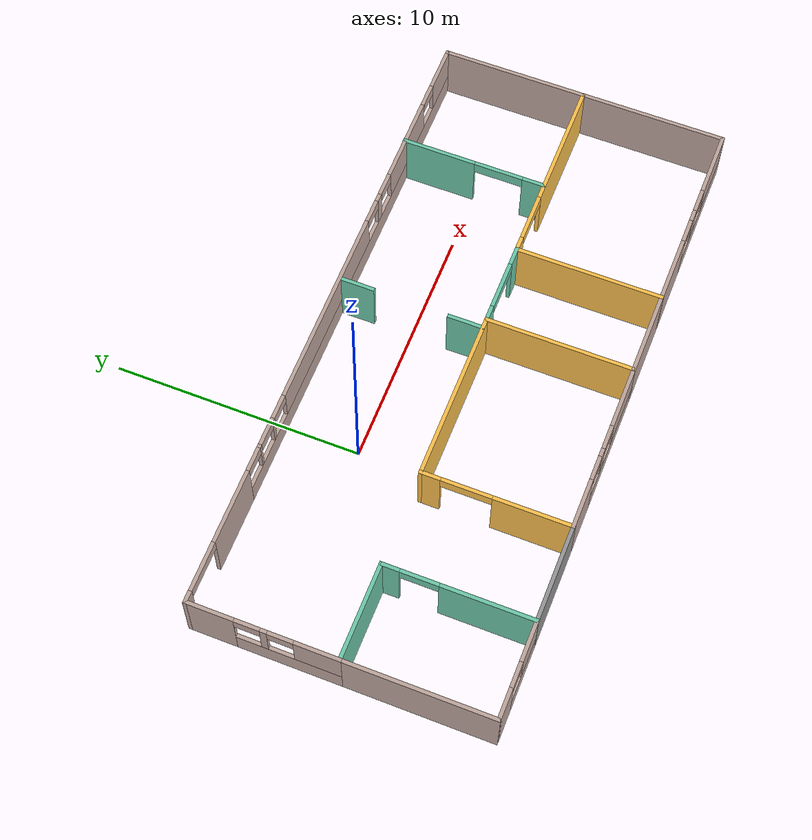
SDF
<?xml version='1.0'?>
<sdf version='1.6'>
  <model name='Building'>
    <pose frame=''>4.22718 -2.84562 0 0 -0 0</pose>
    <link name='Wall_0'>
      <pose frame=''>-12.8748 2.91767 0 0 0 -1.5708</pose>
      <visual name='Wall_0_Visual_0'>
        <pose frame=''>-2.03434 0 1.25 0 -0 0</pose>
        <geometry>
          <box>
            <size>1.93132 0.15 2.5</size>
          </box>
        </geometry>
        <material>
          <script>
            <uri>file://media/materials/scripts/gazebo.material</uri>
            <name>Gazebo/Grey</name>
          </script>
          <ambient>0.760784 0.662745 0.627451 1</ambient>
        </material>
      </visual>
      <collision name='Wall_0_Collision_0'>
        <geometry>
          <box>
            <size>1.93132 0.15 2.5</size>
          </box>
        </geometry>
        <pose frame=''>-2.03434 0 1.25 0 -0 0</pose>
      </collision>
      <visual name='Wall_0_Visual_1'>
        <pose frame=''>0.965658 0 0.5 0 -0 0</pose>
        <geometry>
          <box>
            <size>4.06868 0.15 1</size>
          </box>
        </geometry>
        <material>
          <script>
            <uri>file://media/materials/scripts/gazebo.material</uri>
            <name>Gazebo/Grey</name>
          </script>
          <ambient>0.760784 0.662745 0.627451 1</ambient>
        </material>
      </visual>
      <collision name='Wall_0_Collision_1'>
        <geometry>
          <box>
            <size>4.06868 0.15 1</size>
          </box>
        </geometry>
        <pose frame=''>0.965658 0 0.5 0 -0 0</pose>
      </collision>
      <visual name='Wall_0_Visual_2'>
        <pose frame=''>0.061576 0 1.75 0 -0 0</pose>
        <geometry>
          <box>
            <size>0.26052 0.15 1.5</size>
          </box>
        </geometry>
        <material>
          <script>
            <uri>file://media/materials/scripts/gazebo.material</uri>
            <name>Gazebo/Grey</name>
          </script>
          <ambient>0.760784 0.662745 0.627451 1</ambient>
        </material>
      </visual>
      <collision name='Wall_0_Collision_2'>
        <geometry>
          <box>
            <size>0.26052 0.15 1.5</size>
          </box>
        </geometry>
        <pose frame=''>0.061576 0 1.75 0 -0 0</pose>
      </collision>
      <visual name='Wall_0_Visual_3'>
        <pose frame=''>2.09592 0 1.75 0 -0 0</pose>
        <geometry>
          <box>
            <size>1.80816 0.15 1.5</size>
          </box>
        </geometry>
        <material>
          <script>
            <uri>file://media/materials/scripts/gazebo.material</uri>
            <name>Gazebo/Grey</name>
          </script>
          <ambient>0.760784 0.662745 0.627451 1</ambient>
        </material>
      </visual>
      <collision name='Wall_0_Collision_3'>
        <geometry>
          <box>
            <size>1.80816 0.15 1.5</size>
          </box>
        </geometry>
        <pose frame=''>2.09592 0 1.75 0 -0 0</pose>
      </collision>
      <visual name='Wall_0_Visual_4'>
        <pose frame=''>-0.568684 0 2.25 0 -0 0</pose>
        <geometry>
          <box>
            <size>1 0.15 0.5</size>
          </box>
        </geometry>
        <material>
          <script>
            <uri>file://media/materials/scripts/gazebo.material</uri>
            <name>Gazebo/Grey</name>
          </script>
          <ambient>0.760784 0.662745 0.627451 1</ambient>
        </material>
      </visual>
      <collision name='Wall_0_Collision_4'>
        <geometry>
          <box>
            <size>1 0.15 0.5</size>
          </box>
        </geometry>
        <pose frame=''>-0.568684 0 2.25 0 -0 0</pose>
      </collision>
      <visual name='Wall_0_Visual_5'>
        <pose frame=''>0.691837 0 2.25 0 -0 0</pose>
        <geometry>
          <box>
            <size>1 0.15 0.5</size>
          </box>
        </geometry>
        <material>
          <script>
            <uri>file://media/materials/scripts/gazebo.material</uri>
            <name>Gazebo/Grey</name>
          </script>
          <ambient>0.760784 0.662745 0.627451 1</ambient>
        </material>
      </visual>
      <collision name='Wall_0_Collision_5'>
        <geometry>
          <box>
            <size>1 0.15 0.5</size>
          </box>
        </geometry>
        <pose frame=''>0.691837 0 2.25 0 -0 0</pose>
      </collision>
    </link>
    <link name='Wall_10'>
      <collision name='Wall_10_Collision'>
        <geometry>
          <box>
            <size>4 0.15 2.5</size>
          </box>
        </geometry>
        <pose frame=''>0 0 1.25 0 -0 0</pose>
      </collision>
      <visual name='Wall_10_Visual'>
        <pose frame=''>0 0 1.25 0 -0 0</pose>
        <geometry>
          <box>
            <size>4 0.15 2.5</size>
          </box>
        </geometry>
        <material>
          <script>
            <uri>file://media/materials/scripts/gazebo.material</uri>
            <name>Gazebo/Grey</name>
          </script>
          <ambient>1 1 1 1</ambient>
        </material>
      </visual>
      <pose frame=''>-7.1 -5.85736 0 0 0 -1.2e-05</pose>
    </link>
    <link name='Wall_12'>
      <pose frame=''>-5.175 -2.93236 0 0 -0 1.57074</pose>
      <visual name='Wall_12_Visual_0'>
        <pose frame=''>-1.42698 0 1.25 0 -0 0</pose>
        <geometry>
          <box>
            <size>3.14604 0.15 2.5</size>
          </box>
        </geometry>
        <material>
          <script>
            <uri>file://media/materials/scripts/gazebo.material</uri>
            <name>Gazebo/Grey</name>
          </script>
          <ambient>1 0.764706 0.305882 1</ambient>
        </material>
      </visual>
      <collision name='Wall_12_Collision_0'>
        <geometry>
          <box>
            <size>3.14604 0.15 2.5</size>
          </box>
        </geometry>
        <pose frame=''>-1.42698 0 1.25 0 -0 0</pose>
      </collision>
      <visual name='Wall_12_Visual_1'>
        <pose frame=''>2.57302 0 1.25 0 -0 0</pose>
        <geometry>
          <box>
            <size>0.853958 0.15 2.5</size>
          </box>
        </geometry>
        <material>
          <script>
            <uri>file://media/materials/scripts/gazebo.material</uri>
            <name>Gazebo/Grey</name>
          </script>
          <ambient>1 0.764706 0.305882 1</ambient>
        </material>
      </visual>
      <collision name='Wall_12_Collision_1'>
        <geometry>
          <box>
            <size>0.853958 0.15 2.5</size>
          </box>
        </geometry>
        <pose frame=''>2.57302 0 1.25 0 -0 0</pose>
      </collision>
      <visual name='Wall_12_Visual_2'>
        <pose frame=''>1.14604 0 2.25 0 -0 0</pose>
        <geometry>
          <box>
            <size>2 0.15 0.5</size>
          </box>
        </geometry>
        <material>
          <script>
            <uri>file://media/materials/scripts/gazebo.material</uri>
            <name>Gazebo/Grey</name>
          </script>
          <ambient>1 0.764706 0.305882 1</ambient>
        </material>
      </visual>
      <collision name='Wall_12_Collision_2'>
        <geometry>
          <box>
            <size>2 0.15 0.5</size>
          </box>
        </geometry>
        <pose frame=''>1.14604 0 2.25 0 -0 0</pose>
      </collision>
    </link>
    <link name='Wall_14'>
      <pose frame=''>-1.75018 -5.85738 0 0 -0 0</pose>
      <visual name='Wall_14_Visual_0'>
        <pose frame=''>-2.46755 0 1.25 0 -0 0</pose>
        <geometry>
          <box>
            <size>2.0649 0.15 2.5</size>
          </box>
        </geometry>
        <material>
          <script>
            <uri>file://media/materials/scripts/gazebo.material</uri>
            <name>Gazebo/Grey</name>
          </script>
          <ambient>0.760784 0.662745 0.627451 1</ambient>
        </material>
      </visual>
      <collision name='Wall_14_Collision_0'>
        <geometry>
          <box>
            <size>2.0649 0.15 2.5</size>
          </box>
        </geometry>
        <pose frame=''>-2.46755 0 1.25 0 -0 0</pose>
      </collision>
      <visual name='Wall_14_Visual_1'>
        <pose frame=''>1.03245 0 0.5 0 -0 0</pose>
        <geometry>
          <box>
            <size>4.93509 0.15 1</size>
          </box>
        </geometry>
        <material>
          <script>
            <uri>file://media/materials/scripts/gazebo.material</uri>
            <name>Gazebo/Grey</name>
          </script>
          <ambient>0.760784 0.662745 0.627451 1</ambient>
        </material>
      </visual>
      <collision name='Wall_14_Collision_1'>
        <geometry>
          <box>
            <size>4.93509 0.15 1</size>
          </box>
        </geometry>
        <pose frame=''>1.03245 0 0.5 0 -0 0</pose>
      </collision>
      <visual name='Wall_14_Visual_2'>
        <pose frame=''>-0.267578 0 1.75 0 -0 0</pose>
        <geometry>
          <box>
            <size>0.335034 0.15 1.5</size>
          </box>
        </geometry>
        <material>
          <script>
            <uri>file://media/materials/scripts/gazebo.material</uri>
            <name>Gazebo/Grey</name>
          </script>
          <ambient>0.760784 0.662745 0.627451 1</ambient>
        </material>
      </visual>
      <collision name='Wall_14_Collision_2'>
        <geometry>
          <box>
            <size>0.335034 0.15 1.5</size>
          </box>
        </geometry>
        <pose frame=''>-0.267578 0 1.75 0 -0 0</pose>
      </collision>
      <visual name='Wall_14_Visual_3'>
        <pose frame=''>2.19997 0 1.75 0 -0 0</pose>
        <geometry>
          <box>
            <size>2.60006 0.15 1.5</size>
          </box>
        </geometry>
        <material>
          <script>
            <uri>file://media/materials/scripts/gazebo.material</uri>
            <name>Gazebo/Grey</name>
          </script>
          <ambient>0.760784 0.662745 0.627451 1</ambient>
        </material>
      </visual>
      <collision name='Wall_14_Collision_3'>
        <geometry>
          <box>
            <size>2.60006 0.15 1.5</size>
          </box>
        </geometry>
        <pose frame=''>2.19997 0 1.75 0 -0 0</pose>
      </collision>
      <visual name='Wall_14_Visual_4'>
        <pose frame=''>-0.935095 0 2.25 0 -0 0</pose>
        <geometry>
          <box>
            <size>1 0.15 0.5</size>
          </box>
        </geometry>
        <material>
          <script>
            <uri>file://media/materials/scripts/gazebo.material</uri>
            <name>Gazebo/Grey</name>
          </script>
          <ambient>0.760784 0.662745 0.627451 1</ambient>
        </material>
      </visual>
      <collision name='Wall_14_Collision_4'>
        <geometry>
          <box>
            <size>1 0.15 0.5</size>
          </box>
        </geometry>
        <pose frame=''>-0.935095 0 2.25 0 -0 0</pose>
      </collision>
      <visual name='Wall_14_Visual_5'>
        <pose frame=''>0.399939 0 2.25 0 -0 0</pose>
        <geometry>
          <box>
            <size>1 0.15 0.5</size>
          </box>
        </geometry>
        <material>
          <script>
            <uri>file://media/materials/scripts/gazebo.material</uri>
            <name>Gazebo/Grey</name>
          </script>
          <ambient>0.760784 0.662745 0.627451 1</ambient>
        </material>
      </visual>
      <collision name='Wall_14_Collision_5'>
        <geometry>
          <box>
            <size>1 0.15 0.5</size>
          </box>
        </geometry>
        <pose frame=''>0.399939 0 2.25 0 -0 0</pose>
      </collision>
    </link>
    <link name='Wall_16'>
      <collision name='Wall_16_Collision'>
        <geometry>
          <box>
            <size>6 0.15 2.5</size>
          </box>
        </geometry>
        <pose frame=''>0 0 1.25 0 -0 0</pose>
      </collision>
      <visual name='Wall_16_Visual'>
        <pose frame=''>0 0 1.25 0 -0 0</pose>
        <geometry>
          <box>
            <size>6 0.15 2.5</size>
          </box>
        </geometry>
        <material>
          <script>
            <uri>file://media/materials/scripts/gazebo.material</uri>
            <name>Gazebo/Grey</name>
          </script>
          <ambient>1 0.764706 0.305882 1</ambient>
        </material>
      </visual>
      <pose frame=''>1.67482 -2.93238 0 0 -0 1.5708</pose>
    </link>
    <link name='Wall_18'>
      <collision name='Wall_18_Collision'>
        <geometry>
          <box>
            <size>7 0.15 2.5</size>
          </box>
        </geometry>
        <pose frame=''>0 0 1.25 0 -0 0</pose>
      </collision>
      <visual name='Wall_18_Visual'>
        <pose frame=''>0 0 1.25 0 -0 0</pose>
        <geometry>
          <box>
            <size>7 0.15 2.5</size>
          </box>
        </geometry>
        <material>
          <script>
            <uri>file://media/materials/scripts/gazebo.material</uri>
            <name>Gazebo/Grey</name>
          </script>
          <ambient>1 0.764706 0.305882 1</ambient>
        </material>
      </visual>
      <pose frame=''>-1.75 -0.007356 0 0 0 -7e-06</pose>
    </link>
    <link name='Wall_2'>
      <collision name='Wall_2_Collision'>
        <geometry>
          <box>
            <size>6 0.15 2.5</size>
          </box>
        </geometry>
        <pose frame=''>0 0 1.25 0 -0 0</pose>
      </collision>
      <visual name='Wall_2_Visual'>
        <pose frame=''>0 0 1.25 0 -0 0</pose>
        <geometry>
          <box>
            <size>6 0.15 2.5</size>
          </box>
        </geometry>
        <material>
          <script>
            <uri>file://media/materials/scripts/gazebo.material</uri>
            <name>Gazebo/Grey</name>
          </script>
          <ambient>0.760784 0.662745 0.627451 1</ambient>
        </material>
      </visual>
      <pose frame=''>-12.8748 -2.93233 0 0 0 -1.5708</pose>
    </link>
    <link name='Wall_20'>
      <pose frame=''>3.34982 -0.007379 0 0 -0 0</pose>
      <visual name='Wall_20_Visual_0'>
        <pose frame=''>-1.403 0 1.25 0 -0 0</pose>
        <geometry>
          <box>
            <size>0.693999 0.15 2.5</size>
          </box>
        </geometry>
        <material>
          <script>
            <uri>file://media/materials/scripts/gazebo.material</uri>
            <name>Gazebo/Grey</name>
          </script>
          <ambient>0.435294 0.796078 0.67451 1</ambient>
        </material>
      </visual>
      <collision name='Wall_20_Collision_0'>
        <geometry>
          <box>
            <size>0.693999 0.15 2.5</size>
          </box>
        </geometry>
        <pose frame=''>-1.403 0 1.25 0 -0 0</pose>
      </collision>
      <visual name='Wall_20_Visual_1'>
        <pose frame=''>1.347 0 1.25 0 -0 0</pose>
        <geometry>
          <box>
            <size>0.806001 0.15 2.5</size>
          </box>
        </geometry>
        <material>
          <script>
            <uri>file://media/materials/scripts/gazebo.material</uri>
            <name>Gazebo/Grey</name>
          </script>
          <ambient>0.435294 0.796078 0.67451 1</ambient>
        </material>
      </visual>
      <collision name='Wall_20_Collision_1'>
        <geometry>
          <box>
            <size>0.806001 0.15 2.5</size>
          </box>
        </geometry>
        <pose frame=''>1.347 0 1.25 0 -0 0</pose>
      </collision>
      <visual name='Wall_20_Visual_2'>
        <pose frame=''>-0.056001 0 2.25 0 -0 0</pose>
        <geometry>
          <box>
            <size>2 0.15 0.5</size>
          </box>
        </geometry>
        <material>
          <script>
            <uri>file://media/materials/scripts/gazebo.material</uri>
            <name>Gazebo/Grey</name>
          </script>
          <ambient>0.435294 0.796078 0.67451 1</ambient>
        </material>
      </visual>
      <collision name='Wall_20_Collision_2'>
        <geometry>
          <box>
            <size>2 0.15 0.5</size>
          </box>
        </geometry>
        <pose frame=''>-0.056001 0 2.25 0 -0 0</pose>
      </collision>
    </link>
    <link name='Wall_23'>
      <collision name='Wall_23_Collision'>
        <geometry>
          <box>
            <size>3.5 0.15 2.5</size>
          </box>
        </geometry>
        <pose frame=''>0 0 1.25 0 -0 0</pose>
      </collision>
      <visual name='Wall_23_Visual'>
        <pose frame=''>0 0 1.25 0 -0 0</pose>
        <geometry>
          <box>
            <size>3.5 0.15 2.5</size>
          </box>
        </geometry>
        <material>
          <script>
            <uri>file://media/materials/scripts/gazebo.material</uri>
            <name>Gazebo/Grey</name>
          </script>
          <ambient>0.760784 0.662745 0.627451 1</ambient>
        </material>
      </visual>
      <pose frame=''>3.34982 -5.85738 0 0 -0 0</pose>
    </link>
    <link name='Wall_24'>
      <collision name='Wall_24_Collision'>
        <geometry>
          <box>
            <size>6 0.15 2.5</size>
          </box>
        </geometry>
        <pose frame=''>0 0 1.25 0 -0 0</pose>
      </collision>
      <visual name='Wall_24_Visual'>
        <pose frame=''>0 0 1.25 0 -0 0</pose>
        <geometry>
          <box>
            <size>6 0.15 2.5</size>
          </box>
        </geometry>
        <material>
          <script>
            <uri>file://media/materials/scripts/gazebo.material</uri>
            <name>Gazebo/Grey</name>
          </script>
          <ambient>1 0.764706 0.305882 1</ambient>
        </material>
      </visual>
      <pose frame=''>5.02482 -2.93238 0 0 -0 1.5708</pose>
    </link>
    <link name='Wall_29'>
      <pose frame=''>8.94982 -5.85738 0 0 -0 0</pose>
      <visual name='Wall_29_Visual_0'>
        <pose frame=''>-2.60604 0 1.25 0 -0 0</pose>
        <geometry>
          <box>
            <size>2.78791 0.15 2.5</size>
          </box>
        </geometry>
        <material>
          <script>
            <uri>file://media/materials/scripts/gazebo.material</uri>
            <name>Gazebo/Grey</name>
          </script>
          <ambient>0.760784 0.662745 0.627451 1</ambient>
        </material>
      </visual>
      <collision name='Wall_29_Collision_0'>
        <geometry>
          <box>
            <size>2.78791 0.15 2.5</size>
          </box>
        </geometry>
        <pose frame=''>-2.60604 0 1.25 0 -0 0</pose>
      </collision>
      <visual name='Wall_29_Visual_1'>
        <pose frame=''>1.39396 0 0.5 0 -0 0</pose>
        <geometry>
          <box>
            <size>5.21209 0.15 1</size>
          </box>
        </geometry>
        <material>
          <script>
            <uri>file://media/materials/scripts/gazebo.material</uri>
            <name>Gazebo/Grey</name>
          </script>
          <ambient>0.760784 0.662745 0.627451 1</ambient>
        </material>
      </visual>
      <collision name='Wall_29_Collision_1'>
        <geometry>
          <box>
            <size>5.21209 0.15 1</size>
          </box>
        </geometry>
        <pose frame=''>1.39396 0 0.5 0 -0 0</pose>
      </collision>
      <visual name='Wall_29_Visual_2'>
        <pose frame=''>0.036339 0 1.75 0 -0 0</pose>
        <geometry>
          <box>
            <size>0.496857 0.15 1.5</size>
          </box>
        </geometry>
        <material>
          <script>
            <uri>file://media/materials/scripts/gazebo.material</uri>
            <name>Gazebo/Grey</name>
          </script>
          <ambient>0.760784 0.662745 0.627451 1</ambient>
        </material>
      </visual>
      <collision name='Wall_29_Collision_2'>
        <geometry>
          <box>
            <size>0.496857 0.15 1.5</size>
          </box>
        </geometry>
        <pose frame=''>0.036339 0 1.75 0 -0 0</pose>
      </collision>
      <visual name='Wall_29_Visual_3'>
        <pose frame=''>2.64238 0 1.75 0 -0 0</pose>
        <geometry>
          <box>
            <size>2.71523 0.15 1.5</size>
          </box>
        </geometry>
        <material>
          <script>
            <uri>file://media/materials/scripts/gazebo.material</uri>
            <name>Gazebo/Grey</name>
          </script>
          <ambient>0.760784 0.662745 0.627451 1</ambient>
        </material>
      </visual>
      <collision name='Wall_29_Collision_3'>
        <geometry>
          <box>
            <size>2.71523 0.15 1.5</size>
          </box>
        </geometry>
        <pose frame=''>2.64238 0 1.75 0 -0 0</pose>
      </collision>
      <visual name='Wall_29_Visual_4'>
        <pose frame=''>-0.71209 0 2.25 0 -0 0</pose>
        <geometry>
          <box>
            <size>1 0.15 0.5</size>
          </box>
        </geometry>
        <material>
          <script>
            <uri>file://media/materials/scripts/gazebo.material</uri>
            <name>Gazebo/Grey</name>
          </script>
          <ambient>0.760784 0.662745 0.627451 1</ambient>
        </material>
      </visual>
      <collision name='Wall_29_Collision_4'>
        <geometry>
          <box>
            <size>1 0.15 0.5</size>
          </box>
        </geometry>
        <pose frame=''>-0.71209 0 2.25 0 -0 0</pose>
      </collision>
      <visual name='Wall_29_Visual_5'>
        <pose frame=''>0.784767 0 2.25 0 -0 0</pose>
        <geometry>
          <box>
            <size>1 0.15 0.5</size>
          </box>
        </geometry>
        <material>
          <script>
            <uri>file://media/materials/scripts/gazebo.material</uri>
            <name>Gazebo/Grey</name>
          </script>
          <ambient>0.760784 0.662745 0.627451 1</ambient>
        </material>
      </visual>
      <collision name='Wall_29_Collision_5'>
        <geometry>
          <box>
            <size>1 0.15 0.5</size>
          </box>
        </geometry>
        <pose frame=''>0.784767 0 2.25 0 -0 0</pose>
      </collision>
    </link>
    <link name='Wall_31'>
      <collision name='Wall_31_Collision'>
        <geometry>
          <box>
            <size>6 0.15 2.5</size>
          </box>
        </geometry>
        <pose frame=''>0 0 1.25 0 -0 0</pose>
      </collision>
      <visual name='Wall_31_Visual'>
        <pose frame=''>0 0 1.25 0 -0 0</pose>
        <geometry>
          <box>
            <size>6 0.15 2.5</size>
          </box>
        </geometry>
        <material>
          <script>
            <uri>file://media/materials/scripts/gazebo.material</uri>
            <name>Gazebo/Grey</name>
          </script>
          <ambient>0.760784 0.662745 0.627451 1</ambient>
        </material>
      </visual>
      <pose frame=''>12.8748 -2.93238 0 0 -0 1.5708</pose>
    </link>
    <link name='Wall_33'>
      <pose frame=''>8.94982 -0.007379 0 0 -0 3.14159</pose>
      <visual name='Wall_33_Visual_0'>
        <pose frame=''>-1.3254 0 1.25 0 -0 0</pose>
        <geometry>
          <box>
            <size>5.3492 0.15 2.5</size>
          </box>
        </geometry>
        <material>
          <script>
            <uri>file://media/materials/scripts/gazebo.material</uri>
            <name>Gazebo/Grey</name>
          </script>
          <ambient>1 0.764706 0.305882 1</ambient>
        </material>
      </visual>
      <collision name='Wall_33_Collision_0'>
        <geometry>
          <box>
            <size>5.3492 0.15 2.5</size>
          </box>
        </geometry>
        <pose frame=''>-1.3254 0 1.25 0 -0 0</pose>
      </collision>
      <visual name='Wall_33_Visual_1'>
        <pose frame=''>3.6746 0 1.25 0 -0 0</pose>
        <geometry>
          <box>
            <size>0.650803 0.15 2.5</size>
          </box>
        </geometry>
        <material>
          <script>
            <uri>file://media/materials/scripts/gazebo.material</uri>
            <name>Gazebo/Grey</name>
          </script>
          <ambient>1 0.764706 0.305882 1</ambient>
        </material>
      </visual>
      <collision name='Wall_33_Collision_1'>
        <geometry>
          <box>
            <size>0.650803 0.15 2.5</size>
          </box>
        </geometry>
        <pose frame=''>3.6746 0 1.25 0 -0 0</pose>
      </collision>
      <visual name='Wall_33_Visual_2'>
        <pose frame=''>2.3492 0 2.25 0 -0 0</pose>
        <geometry>
          <box>
            <size>2 0.15 0.5</size>
          </box>
        </geometry>
        <material>
          <script>
            <uri>file://media/materials/scripts/gazebo.material</uri>
            <name>Gazebo/Grey</name>
          </script>
          <ambient>1 0.764706 0.305882 1</ambient>
        </material>
      </visual>
      <collision name='Wall_33_Collision_2'>
        <geometry>
          <box>
            <size>2 0.15 0.5</size>
          </box>
        </geometry>
        <pose frame=''>2.3492 0 2.25 0 -0 0</pose>
      </collision>
    </link>
    <link name='Wall_37'>
      <collision name='Wall_37_Collision'>
        <geometry>
          <box>
            <size>6 0.15 2.5</size>
          </box>
        </geometry>
        <pose frame=''>0 0 1.25 0 -0 0</pose>
      </collision>
      <visual name='Wall_37_Visual'>
        <pose frame=''>0 0 1.25 0 -0 0</pose>
        <geometry>
          <box>
            <size>6 0.15 2.5</size>
          </box>
        </geometry>
        <material>
          <script>
            <uri>file://media/materials/scripts/gazebo.material</uri>
            <name>Gazebo/Grey</name>
          </script>
          <ambient>0.760784 0.662745 0.627451 1</ambient>
        </material>
      </visual>
      <pose frame=''>12.8748 2.91762 0 0 -0 1.5708</pose>
    </link>
    <link name='Wall_39'>
      <pose frame=''>0 5.84264 0 0 0 -2e-06</pose>
      <visual name='Wall_39_Visual_0'>
        <pose frame=''>-12.6963 0 1.25 0 -0 0</pose>
        <geometry>
          <box>
            <size>0.507003 0.15 2.5</size>
          </box>
        </geometry>
        <material>
          <script>
            <uri>file://media/materials/scripts/gazebo.material</uri>
            <name>Gazebo/Grey</name>
          </script>
          <ambient>0.760784 0.662745 0.627451 1</ambient>
        </material>
      </visual>
      <collision name='Wall_39_Collision_0'>
        <geometry>
          <box>
            <size>0.507003 0.15 2.5</size>
          </box>
        </geometry>
        <pose frame=''>-12.6963 0 1.25 0 -0 0</pose>
      </collision>
      <visual name='Wall_39_Visual_1'>
        <pose frame=''>-8.93538 0 1.25 0 -0 0</pose>
        <geometry>
          <box>
            <size>3.01488 0.15 2.5</size>
          </box>
        </geometry>
        <material>
          <script>
            <uri>file://media/materials/scripts/gazebo.material</uri>
            <name>Gazebo/Grey</name>
          </script>
          <ambient>0.760784 0.662745 0.627451 1</ambient>
        </material>
      </visual>
      <collision name='Wall_39_Collision_1'>
        <geometry>
          <box>
            <size>3.01488 0.15 2.5</size>
          </box>
        </geometry>
        <pose frame=''>-8.93538 0 1.25 0 -0 0</pose>
      </collision>
      <visual name='Wall_39_Visual_2'>
        <pose frame=''>2.76094 0 0.5 0 -0 0</pose>
        <geometry>
          <box>
            <size>20.3778 0.15 1</size>
          </box>
        </geometry>
        <material>
          <script>
            <uri>file://media/materials/scripts/gazebo.material</uri>
            <name>Gazebo/Grey</name>
          </script>
          <ambient>0.760784 0.662745 0.627451 1</ambient>
        </material>
      </visual>
      <collision name='Wall_39_Collision_2'>
        <geometry>
          <box>
            <size>20.3778 0.15 1</size>
          </box>
        </geometry>
        <pose frame=''>2.76094 0 0.5 0 -0 0</pose>
      </collision>
      <visual name='Wall_39_Visual_3'>
        <pose frame=''>-6.3614 0 1.75 0 -0 0</pose>
        <geometry>
          <box>
            <size>0.133081 0.15 1.5</size>
          </box>
        </geometry>
        <material>
          <script>
            <uri>file://media/materials/scripts/gazebo.material</uri>
            <name>Gazebo/Grey</name>
          </script>
          <ambient>0.760784 0.662745 0.627451 1</ambient>
        </material>
      </visual>
      <collision name='Wall_39_Collision_3'>
        <geometry>
          <box>
            <size>0.133081 0.15 1.5</size>
          </box>
        </geometry>
        <pose frame=''>-6.3614 0 1.75 0 -0 0</pose>
      </collision>
      <visual name='Wall_39_Visual_4'>
        <pose frame=''>-5.20894 0 1.75 0 -0 0</pose>
        <geometry>
          <box>
            <size>0.171834 0.15 1.5</size>
          </box>
        </geometry>
        <material>
          <script>
            <uri>file://media/materials/scripts/gazebo.material</uri>
            <name>Gazebo/Grey</name>
          </script>
          <ambient>0.760784 0.662745 0.627451 1</ambient>
        </material>
      </visual>
      <collision name='Wall_39_Collision_4'>
        <geometry>
          <box>
            <size>0.171834 0.15 1.5</size>
          </box>
        </geometry>
        <pose frame=''>-5.20894 0 1.75 0 -0 0</pose>
      </collision>
      <visual name='Wall_39_Visual_5'>
        <pose frame=''>-0.013145 0 1.75 0 -0 0</pose>
        <geometry>
          <box>
            <size>8.21975 0.15 1.5</size>
          </box>
        </geometry>
        <material>
          <script>
            <uri>file://media/materials/scripts/gazebo.material</uri>
            <name>Gazebo/Grey</name>
          </script>
          <ambient>0.760784 0.662745 0.627451 1</ambient>
        </material>
      </visual>
      <collision name='Wall_39_Collision_5'>
        <geometry>
          <box>
            <size>8.21975 0.15 1.5</size>
          </box>
        </geometry>
        <pose frame=''>-0.013145 0 1.75 0 -0 0</pose>
      </collision>
      <visual name='Wall_39_Visual_6'>
        <pose frame=''>5.26425 0 1.75 0 -0 0</pose>
        <geometry>
          <box>
            <size>0.335033 0.15 1.5</size>
          </box>
        </geometry>
        <material>
          <script>
            <uri>file://media/materials/scripts/gazebo.material</uri>
            <name>Gazebo/Grey</name>
          </script>
          <ambient>0.760784 0.662745 0.627451 1</ambient>
        </material>
      </visual>
      <collision name='Wall_39_Collision_6'>
        <geometry>
          <box>
            <size>0.335033 0.15 1.5</size>
          </box>
        </geometry>
        <pose frame=''>5.26425 0 1.75 0 -0 0</pose>
      </collision>
      <visual name='Wall_39_Visual_7'>
        <pose frame=''>8.23773 0 1.75 0 -0 0</pose>
        <geometry>
          <box>
            <size>3.61194 0.15 1.5</size>
          </box>
        </geometry>
        <material>
          <script>
            <uri>file://media/materials/scripts/gazebo.material</uri>
            <name>Gazebo/Grey</name>
          </script>
          <ambient>0.760784 0.662745 0.627451 1</ambient>
        </material>
      </visual>
      <collision name='Wall_39_Collision_7'>
        <geometry>
          <box>
            <size>3.61194 0.15 1.5</size>
          </box>
        </geometry>
        <pose frame=''>8.23773 0 1.75 0 -0 0</pose>
      </collision>
      <visual name='Wall_39_Visual_8'>
        <pose frame=''>11.9968 0 1.75 0 -0 0</pose>
        <geometry>
          <box>
            <size>1.90612 0.15 1.5</size>
          </box>
        </geometry>
        <material>
          <script>
            <uri>file://media/materials/scripts/gazebo.material</uri>
            <name>Gazebo/Grey</name>
          </script>
          <ambient>0.760784 0.662745 0.627451 1</ambient>
        </material>
      </visual>
      <collision name='Wall_39_Collision_8'>
        <geometry>
          <box>
            <size>1.90612 0.15 1.5</size>
          </box>
        </geometry>
        <pose frame=''>11.9968 0 1.75 0 -0 0</pose>
      </collision>
      <visual name='Wall_39_Visual_9'>
        <pose frame=''>-11.4428 0 2.25 0 -0 0</pose>
        <geometry>
          <box>
            <size>2 0.15 0.5</size>
          </box>
        </geometry>
        <material>
          <script>
            <uri>file://media/materials/scripts/gazebo.material</uri>
            <name>Gazebo/Grey</name>
          </script>
          <ambient>0.760784 0.662745 0.627451 1</ambient>
        </material>
      </visual>
      <collision name='Wall_39_Collision_9'>
        <geometry>
          <box>
            <size>2 0.15 0.5</size>
          </box>
        </geometry>
        <pose frame=''>-11.4428 0 2.25 0 -0 0</pose>
      </collision>
      <visual name='Wall_39_Visual_10'>
        <pose frame=''>-6.92794 0 2.25 0 -0 0</pose>
        <geometry>
          <box>
            <size>1 0.15 0.5</size>
          </box>
        </geometry>
        <material>
          <script>
            <uri>file://media/materials/scripts/gazebo.material</uri>
            <name>Gazebo/Grey</name>
          </script>
          <ambient>0.760784 0.662745 0.627451 1</ambient>
        </material>
      </visual>
      <collision name='Wall_39_Collision_10'>
        <geometry>
          <box>
            <size>1 0.15 0.5</size>
          </box>
        </geometry>
        <pose frame=''>-6.92794 0 2.25 0 -0 0</pose>
      </collision>
      <visual name='Wall_39_Visual_11'>
        <pose frame=''>-5.79486 0 2.25 0 -0 0</pose>
        <geometry>
          <box>
            <size>1 0.15 0.5</size>
          </box>
        </geometry>
        <material>
          <script>
            <uri>file://media/materials/scripts/gazebo.material</uri>
            <name>Gazebo/Grey</name>
          </script>
          <ambient>0.760784 0.662745 0.627451 1</ambient>
        </material>
      </visual>
      <collision name='Wall_39_Collision_11'>
        <geometry>
          <box>
            <size>1 0.15 0.5</size>
          </box>
        </geometry>
        <pose frame=''>-5.79486 0 2.25 0 -0 0</pose>
      </collision>
      <visual name='Wall_39_Visual_12'>
        <pose frame=''>-4.62302 0 2.25 0 -0 0</pose>
        <geometry>
          <box>
            <size>1 0.15 0.5</size>
          </box>
        </geometry>
        <material>
          <script>
            <uri>file://media/materials/scripts/gazebo.material</uri>
            <name>Gazebo/Grey</name>
          </script>
          <ambient>0.760784 0.662745 0.627451 1</ambient>
        </material>
      </visual>
      <collision name='Wall_39_Collision_12'>
        <geometry>
          <box>
            <size>1 0.15 0.5</size>
          </box>
        </geometry>
        <pose frame=''>-4.62302 0 2.25 0 -0 0</pose>
      </collision>
      <visual name='Wall_39_Visual_13'>
        <pose frame=''>4.59673 0 2.25 0 -0 0</pose>
        <geometry>
          <box>
            <size>1 0.15 0.5</size>
          </box>
        </geometry>
        <material>
          <script>
            <uri>file://media/materials/scripts/gazebo.material</uri>
            <name>Gazebo/Grey</name>
          </script>
          <ambient>0.760784 0.662745 0.627451 1</ambient>
        </material>
      </visual>
      <collision name='Wall_39_Collision_13'>
        <geometry>
          <box>
            <size>1 0.15 0.5</size>
          </box>
        </geometry>
        <pose frame=''>4.59673 0 2.25 0 -0 0</pose>
      </collision>
      <visual name='Wall_39_Visual_14'>
        <pose frame=''>5.93177 0 2.25 0 -0 0</pose>
        <geometry>
          <box>
            <size>1 0.15 0.5</size>
          </box>
        </geometry>
        <material>
          <script>
            <uri>file://media/materials/scripts/gazebo.material</uri>
            <name>Gazebo/Grey</name>
          </script>
          <ambient>0.760784 0.662745 0.627451 1</ambient>
        </material>
      </visual>
      <collision name='Wall_39_Collision_14'>
        <geometry>
          <box>
            <size>1 0.15 0.5</size>
          </box>
        </geometry>
        <pose frame=''>5.93177 0 2.25 0 -0 0</pose>
      </collision>
      <visual name='Wall_39_Visual_15'>
        <pose frame=''>10.5437 0 2.25 0 -0 0</pose>
        <geometry>
          <box>
            <size>1 0.15 0.5</size>
          </box>
        </geometry>
        <material>
          <script>
            <uri>file://media/materials/scripts/gazebo.material</uri>
            <name>Gazebo/Grey</name>
          </script>
          <ambient>0.760784 0.662745 0.627451 1</ambient>
        </material>
      </visual>
      <collision name='Wall_39_Collision_15'>
        <geometry>
          <box>
            <size>1 0.15 0.5</size>
          </box>
        </geometry>
        <pose frame=''>10.5437 0 2.25 0 -0 0</pose>
      </collision>
    </link>
    <link name='Wall_4'>
      <pose frame=''>-10.9498 -5.85733 0 0 -0 0</pose>
      <visual name='Wall_4_Visual_0'>
        <pose frame=''>-1.34533 0 1.25 0 -0 0</pose>
        <geometry>
          <box>
            <size>1.30933 0.15 2.5</size>
          </box>
        </geometry>
        <material>
          <script>
            <uri>file://media/materials/scripts/gazebo.material</uri>
            <name>Gazebo/Grey</name>
          </script>
          <ambient>0.760784 0.662745 0.627451 1</ambient>
        </material>
      </visual>
      <collision name='Wall_4_Collision_0'>
        <geometry>
          <box>
            <size>1.30933 0.15 2.5</size>
          </box>
        </geometry>
        <pose frame=''>-1.34533 0 1.25 0 -0 0</pose>
      </collision>
      <visual name='Wall_4_Visual_1'>
        <pose frame=''>0.654667 0 0.5 0 -0 0</pose>
        <geometry>
          <box>
            <size>2.69067 0.15 1</size>
          </box>
        </geometry>
        <material>
          <script>
            <uri>file://media/materials/scripts/gazebo.material</uri>
            <name>Gazebo/Grey</name>
          </script>
          <ambient>0.760784 0.662745 0.627451 1</ambient>
        </material>
      </visual>
      <collision name='Wall_4_Collision_1'>
        <geometry>
          <box>
            <size>2.69067 0.15 1</size>
          </box>
        </geometry>
        <pose frame=''>0.654667 0 0.5 0 -0 0</pose>
      </collision>
      <visual name='Wall_4_Visual_2'>
        <pose frame=''>1.15467 0 1.75 0 -0 0</pose>
        <geometry>
          <box>
            <size>1.69067 0.15 1.5</size>
          </box>
        </geometry>
        <material>
          <script>
            <uri>file://media/materials/scripts/gazebo.material</uri>
            <name>Gazebo/Grey</name>
          </script>
          <ambient>0.760784 0.662745 0.627451 1</ambient>
        </material>
      </visual>
      <collision name='Wall_4_Collision_2'>
        <geometry>
          <box>
            <size>1.69067 0.15 1.5</size>
          </box>
        </geometry>
        <pose frame=''>1.15467 0 1.75 0 -0 0</pose>
      </collision>
      <visual name='Wall_4_Visual_3'>
        <pose frame=''>-0.190666 0 2.25 0 -0 0</pose>
        <geometry>
          <box>
            <size>1 0.15 0.5</size>
          </box>
        </geometry>
        <material>
          <script>
            <uri>file://media/materials/scripts/gazebo.material</uri>
            <name>Gazebo/Grey</name>
          </script>
          <ambient>0.760784 0.662745 0.627451 1</ambient>
        </material>
      </visual>
      <collision name='Wall_4_Collision_3'>
        <geometry>
          <box>
            <size>1 0.15 0.5</size>
          </box>
        </geometry>
        <pose frame=''>-0.190666 0 2.25 0 -0 0</pose>
      </collision>
    </link>
    <link name='Wall_41'>
      <collision name='Wall_41_Collision'>
        <geometry>
          <box>
            <size>1.5 0.15 2.5</size>
          </box>
        </geometry>
        <pose frame=''>0 0 1.25 0 -0 0</pose>
      </collision>
      <visual name='Wall_41_Visual'>
        <pose frame=''>0 0 1.25 0 -0 0</pose>
        <geometry>
          <box>
            <size>1.5 0.15 2.5</size>
          </box>
        </geometry>
        <material>
          <script>
            <uri>file://media/materials/scripts/gazebo.material</uri>
            <name>Gazebo/Grey</name>
          </script>
          <ambient>0.435294 0.796078 0.67451 1</ambient>
        </material>
      </visual>
      <pose frame=''>1.2911 0.669666 0 0 -0 1.5708</pose>
    </link>
    <link name='Wall_43'>
      <collision name='Wall_43_Collision'>
        <geometry>
          <box>
            <size>1.5 0.15 2.5</size>
          </box>
        </geometry>
        <pose frame=''>0 0 1.25 0 -0 0</pose>
      </collision>
      <visual name='Wall_43_Visual'>
        <pose frame=''>0 0 1.25 0 -0 0</pose>
        <geometry>
          <box>
            <size>1.5 0.15 2.5</size>
          </box>
        </geometry>
        <material>
          <script>
            <uri>file://media/materials/scripts/gazebo.material</uri>
            <name>Gazebo/Grey</name>
          </script>
          <ambient>0.435294 0.796078 0.67451 1</ambient>
        </material>
      </visual>
      <pose frame=''>1.32628 5.15934 0 0 0 -1.5708</pose>
    </link>
    <link name='Wall_45'>
      <pose frame=''>8.17731 2.93238 0 0 -0 1.5708</pose>
      <visual name='Wall_45_Visual_0'>
        <pose frame=''>-2.51976 0 1.25 0 -0 0</pose>
        <geometry>
          <box>
            <size>0.960478 0.15 2.5</size>
          </box>
        </geometry>
        <material>
          <script>
            <uri>file://media/materials/scripts/gazebo.material</uri>
            <name>Gazebo/Grey</name>
          </script>
          <ambient>0.435294 0.796078 0.67451 1</ambient>
        </material>
      </visual>
      <collision name='Wall_45_Collision_0'>
        <geometry>
          <box>
            <size>0.960478 0.15 2.5</size>
          </box>
        </geometry>
        <pose frame=''>-2.51976 0 1.25 0 -0 0</pose>
      </collision>
      <visual name='Wall_45_Visual_1'>
        <pose frame=''>1.48024 0 1.25 0 -0 0</pose>
        <geometry>
          <box>
            <size>3.03952 0.15 2.5</size>
          </box>
        </geometry>
        <material>
          <script>
            <uri>file://media/materials/scripts/gazebo.material</uri>
            <name>Gazebo/Grey</name>
          </script>
          <ambient>0.435294 0.796078 0.67451 1</ambient>
        </material>
      </visual>
      <collision name='Wall_45_Collision_1'>
        <geometry>
          <box>
            <size>3.03952 0.15 2.5</size>
          </box>
        </geometry>
        <pose frame=''>1.48024 0 1.25 0 -0 0</pose>
      </collision>
      <visual name='Wall_45_Visual_2'>
        <pose frame=''>-1.03952 0 2.25 0 -0 0</pose>
        <geometry>
          <box>
            <size>2 0.15 0.5</size>
          </box>
        </geometry>
        <material>
          <script>
            <uri>file://media/materials/scripts/gazebo.material</uri>
            <name>Gazebo/Grey</name>
          </script>
          <ambient>0.435294 0.796078 0.67451 1</ambient>
        </material>
      </visual>
      <collision name='Wall_45_Collision_2'>
        <geometry>
          <box>
            <size>2 0.15 0.5</size>
          </box>
        </geometry>
        <pose frame=''>-1.03952 0 2.25 0 -0 0</pose>
      </collision>
    </link>
    <link name='Wall_6'>
      <pose frame=''>-9.02482 -2.93233 0 0 -0 1.5708</pose>
      <visual name='Wall_6_Visual_0'>
        <pose frame=''>-1.14251 0 1.25 0 -0 0</pose>
        <geometry>
          <box>
            <size>3.71499 0.15 2.5</size>
          </box>
        </geometry>
        <material>
          <script>
            <uri>file://media/materials/scripts/gazebo.material</uri>
            <name>Gazebo/Grey</name>
          </script>
          <ambient>0.435294 0.796078 0.67451 1</ambient>
        </material>
      </visual>
      <collision name='Wall_6_Collision_0'>
        <geometry>
          <box>
            <size>3.71499 0.15 2.5</size>
          </box>
        </geometry>
        <pose frame=''>-1.14251 0 1.25 0 -0 0</pose>
      </collision>
      <visual name='Wall_6_Visual_1'>
        <pose frame=''>2.6075 0 1.25 0 -0 0</pose>
        <geometry>
          <box>
            <size>0.78501 0.15 2.5</size>
          </box>
        </geometry>
        <material>
          <script>
            <uri>file://media/materials/scripts/gazebo.material</uri>
            <name>Gazebo/Grey</name>
          </script>
          <ambient>0.435294 0.796078 0.67451 1</ambient>
        </material>
      </visual>
      <collision name='Wall_6_Collision_1'>
        <geometry>
          <box>
            <size>0.78501 0.15 2.5</size>
          </box>
        </geometry>
        <pose frame=''>2.6075 0 1.25 0 -0 0</pose>
      </collision>
      <visual name='Wall_6_Visual_2'>
        <pose frame=''>1.46499 0 2.25 0 -0 0</pose>
        <geometry>
          <box>
            <size>1.5 0.15 0.5</size>
          </box>
        </geometry>
        <material>
          <script>
            <uri>file://media/materials/scripts/gazebo.material</uri>
            <name>Gazebo/Grey</name>
          </script>
          <ambient>0.435294 0.796078 0.67451 1</ambient>
        </material>
      </visual>
      <collision name='Wall_6_Collision_2'>
        <geometry>
          <box>
            <size>1.5 0.15 0.5</size>
          </box>
        </geometry>
        <pose frame=''>1.46499 0 2.25 0 -0 0</pose>
      </collision>
    </link>
    <link name='Wall_8'>
      <collision name='Wall_8_Collision'>
        <geometry>
          <box>
            <size>4 0.15 2.5</size>
          </box>
        </geometry>
        <pose frame=''>0 0 1.25 0 -0 0</pose>
      </collision>
      <visual name='Wall_8_Visual'>
        <pose frame=''>0 0 1.25 0 -0 0</pose>
        <geometry>
          <box>
            <size>4 0.15 2.5</size>
          </box>
        </geometry>
        <material>
          <script>
            <uri>file://media/materials/scripts/gazebo.material</uri>
            <name>Gazebo/Grey</name>
          </script>
          <ambient>0.435294 0.796078 0.67451 1</ambient>
        </material>
      </visual>
      <pose frame=''>-10.9498 -0.007333 0 0 -0 3.14159</pose>
    </link>
    <static>1</static>
  </model>
</sdf>
